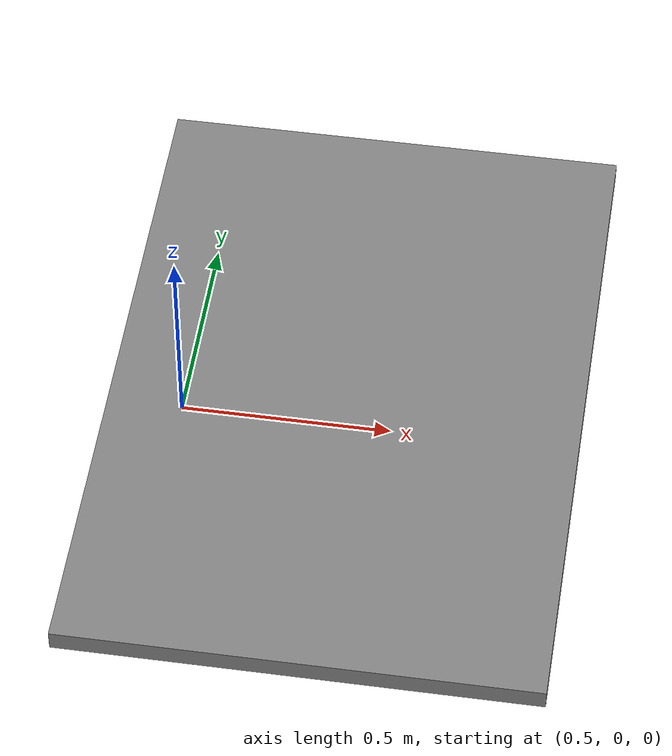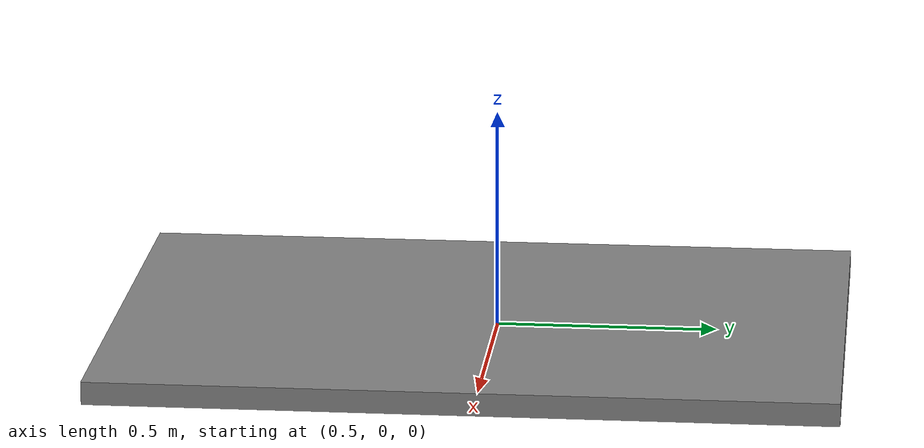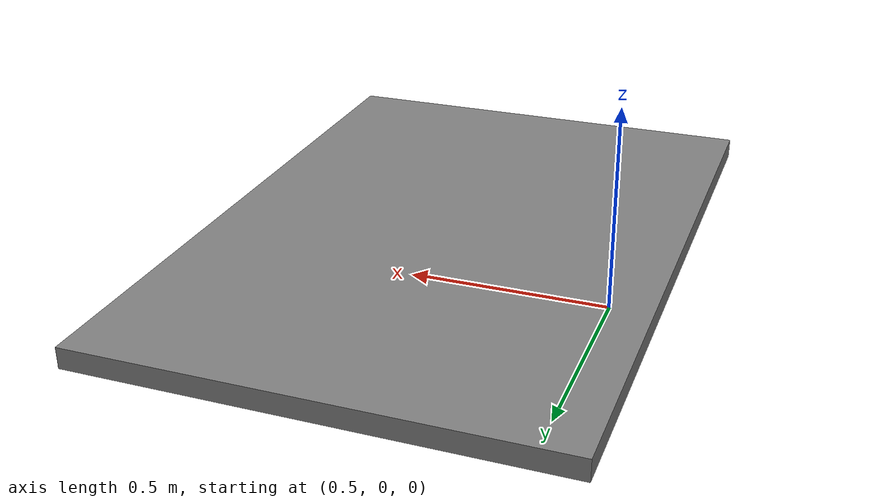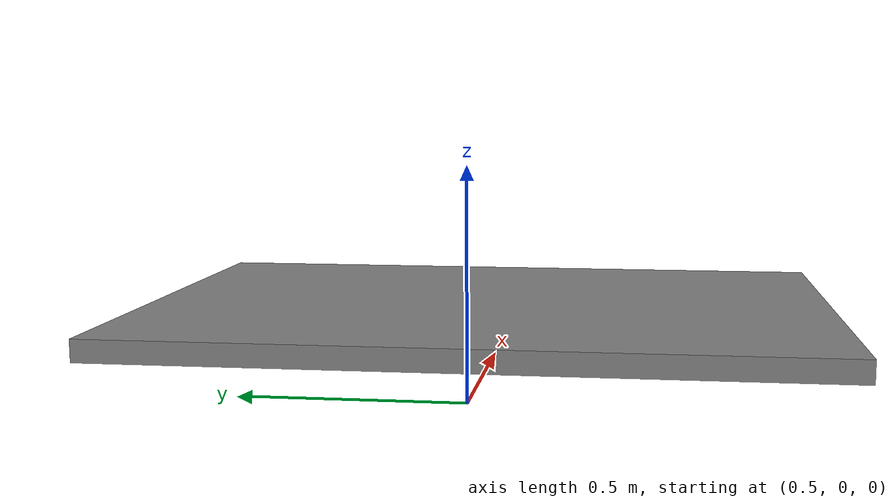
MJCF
<mujoco model="miscobj">
  <worldbody>
    <body name="table_body" pos="0.9 0.0 0.125" quat="1 0 0 0">
      <site name="tabletop" pos="0 0 0.025" size="0.01 0.01 0.01" rgba="1 0 0 0" type="sphere" group="1" />
      <geom friction="1 0.005 0.0001" group="0" name="table_collision" pos="0 0 0" size="0.55 0.8 0.025" type="box" solref="0.001 1" contype="1" conaffinity="0" condim="3"/>
    </body>
  </worldbody>
</mujoco>
